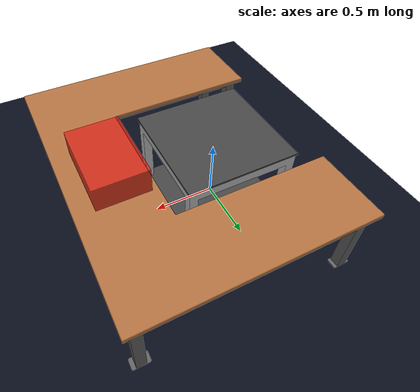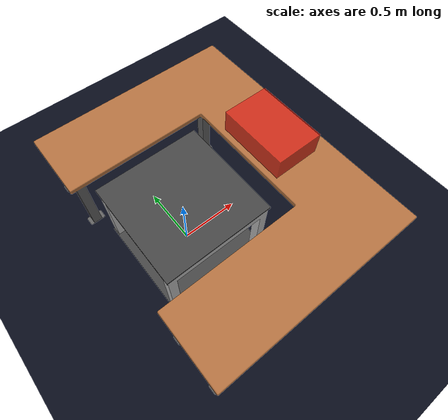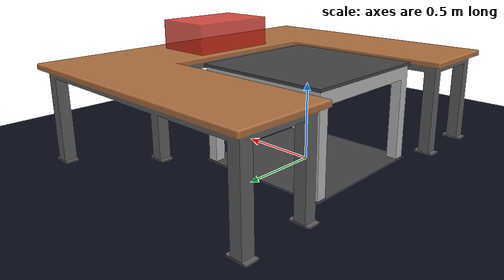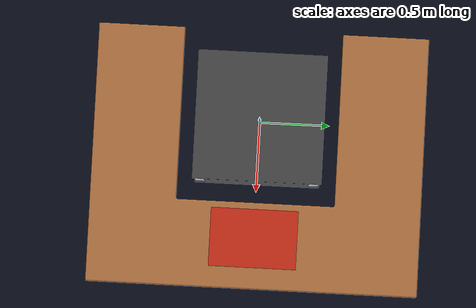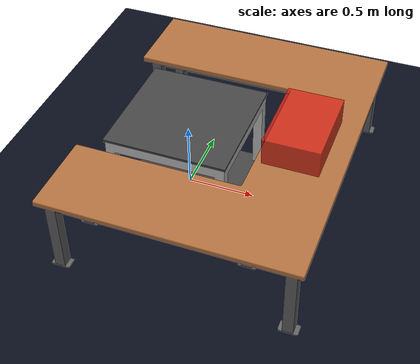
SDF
<sdf version='1.9'>
  <!-- Copia de ur5_pick_place/worlds/lab_base_world.sdf con fisica a 1 kHz
       (paso 1 ms) para control por torque. Mismo contenido: mesa_base,
       surgery_table, obstaculo, sun, gravedad -9.8. -->
  <world name='default'>
    <physics name="1ms" type="ode">
      <max_step_size>0.001</max_step_size>
      <real_time_update_rate>1000.0</real_time_update_rate>
      <real_time_factor>1.0</real_time_factor>
    </physics>
    <plugin name='gz::sim::systems::Physics' filename='gz-sim-physics-system'/>
    <plugin name='gz::sim::systems::UserCommands' filename='gz-sim-user-commands-system'/>
    <plugin name='gz::sim::systems::SceneBroadcaster' filename='gz-sim-scene-broadcaster-system'/>
    <plugin name='gz::sim::systems::Contact' filename='gz-sim-contact-system'/>
    <gravity>0 0 -9.8</gravity>
    <magnetic_field>6e-06 2.3e-05 -4.2e-05</magnetic_field>
    <atmosphere type='adiabatic'/>
    <scene>
      <ambient>0.4 0.4 0.4 1</ambient>
      <background>0.7 0.7 0.7 1</background>
      <shadows>true</shadows>
    </scene>
    <audio>
      <device>default</device>
    </audio>
    <model name='ground_plane'>
      <static>true</static>
      <link name='link'>
        <collision name='collision'>
          <geometry>
            <plane>
              <normal>0 0 1</normal>
              <size>100 100</size>
            </plane>
          </geometry>
          <surface>
            <friction>
              <ode/>
            </friction>
            <bounce/>
            <contact/>
          </surface>
        </collision>
        <visual name='visual'>
          <geometry>
            <plane>
              <normal>0 0 1</normal>
              <size>100 100</size>
            </plane>
          </geometry>
          <material>
              <ambient>0.031 0.043 0.1 1</ambient>
              <diffuse>0.031 0.043 0.1 1</diffuse>
              <specular>0.031 0.043 0.1 1</specular>
          </material>
        </visual>
        <pose>0 0 0 0 -0 0</pose>
        <inertial>
          <pose>0 0 0 0 -0 0</pose>
          <mass>1</mass>
          <inertia>
            <ixx>1</ixx>
            <ixy>0</ixy>
            <ixz>0</ixz>
            <iyy>1</iyy>
            <iyz>0</iyz>
            <izz>1</izz>
          </inertia>
        </inertial>
        <enable_wind>false</enable_wind>
      </link>
      <pose>0 0 0 0 -0 0</pose>
      <self_collide>false</self_collide>
    </model>

    <!-- Base donde está montado el UR5 -->
    <model name='mesa_base'>
      <include>
            <uri>model://ur5_base</uri>
      </include>
      <pose>-0.0 -0.0 -0.000817 0 -0 0</pose>
      <static>true</static>
    </model>

    <!-- Mesa de trabajo del UR5 (superficie sobre la que opera el efector final)
         z=0.0: patas del mesh en el piso de Gazebo (z_local=0 = base de la mesh) -->
    <model name='surgery_table'>
      <include>
            <uri>model://surgery_table</uri>
      </include>
      <pose>0.3 0.0 0.0 0 0 0</pose>
      <static>true</static>
    </model>

    <model name='obstacle'>
      <static>true</static>
      <link name='link'>
        <collision name='collision'>
          <geometry>
            <box>
              <size>0.40 0.60 0.20</size>
            </box>
          </geometry>
        </collision>
        <visual name='visual'>
          <geometry>
            <box>
              <size>0.40 0.60 0.20</size>
            </box>
          </geometry>
          <material>
            <ambient>0.85 0.15 0.10 0.8</ambient>
            <diffuse>0.85 0.15 0.10 0.8</diffuse>
            <specular>0.1 0.1 0.1 1</specular>
          </material>
        </visual>
      </link>
      <pose>0.85 0.00 0.73 0 0 0</pose>
    </model>

    <light name='sun' type='directional'>
      <pose>0 0 10 0 -0 0</pose>
      <cast_shadows>true</cast_shadows>
      <intensity>1.5</intensity>
      <direction>-0.5 0.5 -1</direction>
      <diffuse>0.8 0.8 0.8 1</diffuse>
      <specular>0.2 0.2 0.2 1</specular>
      <attenuation>
        <range>1000</range>
        <linear>0.01</linear>
        <constant>0.90000000000000002</constant>
        <quadratic>0.001</quadratic>
      </attenuation>
      <spot>
        <inner_angle>0</inner_angle>
        <outer_angle>0</outer_angle>
        <falloff>0</falloff>
      </spot>
    </light>
  </world>
</sdf>

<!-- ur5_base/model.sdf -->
<sdf version="1.5">
  <model name="ur5_base">
    <static>false</static>
    <link name="link">
      <collision name="collision">
        <geometry>
         <mesh>
		  <scale>0.01 0.01 0.01</scale>
          <uri>model://ur5_base/meshes/ur5_base.dae</uri>
         </mesh>
        </geometry>
        <surface>
          <friction>
            <ode>
              <mu>100</mu>
              <mu2>50</mu2>
            </ode>
          </friction>
        </surface>
      </collision>
      <visual name="visual">
        <cast_shadows>false</cast_shadows>
        <geometry>
		 <mesh>
		  <scale>0.01 0.01 0.01</scale>
          <uri>model://ur5_base/meshes/ur5_base.dae</uri>
         </mesh>
        </geometry>
      </visual>
    </link>
  </model>
</sdf>

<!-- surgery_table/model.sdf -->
<sdf version="1.5">
  <model name="surgery_table">
    <static>false</static>
    <link name="link">
      <collision name="collision">
        <geometry>
         <mesh>
		  <scale>0.01 0.01 0.01</scale>
          <uri>model://surgery_table/meshes/surgery_table.dae</uri>
         </mesh>
        </geometry>
        <surface>
          <friction>
            <ode>
              <mu>100</mu>
              <mu2>50</mu2>
            </ode>
          </friction>
        </surface>
      </collision>
      <visual name="visual">
        <cast_shadows>false</cast_shadows>
        <geometry>
		 <mesh>
		  <scale>0.01 0.01 0.01</scale>
          <uri>model://surgery_table/meshes/surgery_table.dae</uri>
         </mesh>
        </geometry>
      </visual>
    </link>
  </model>
</sdf>
